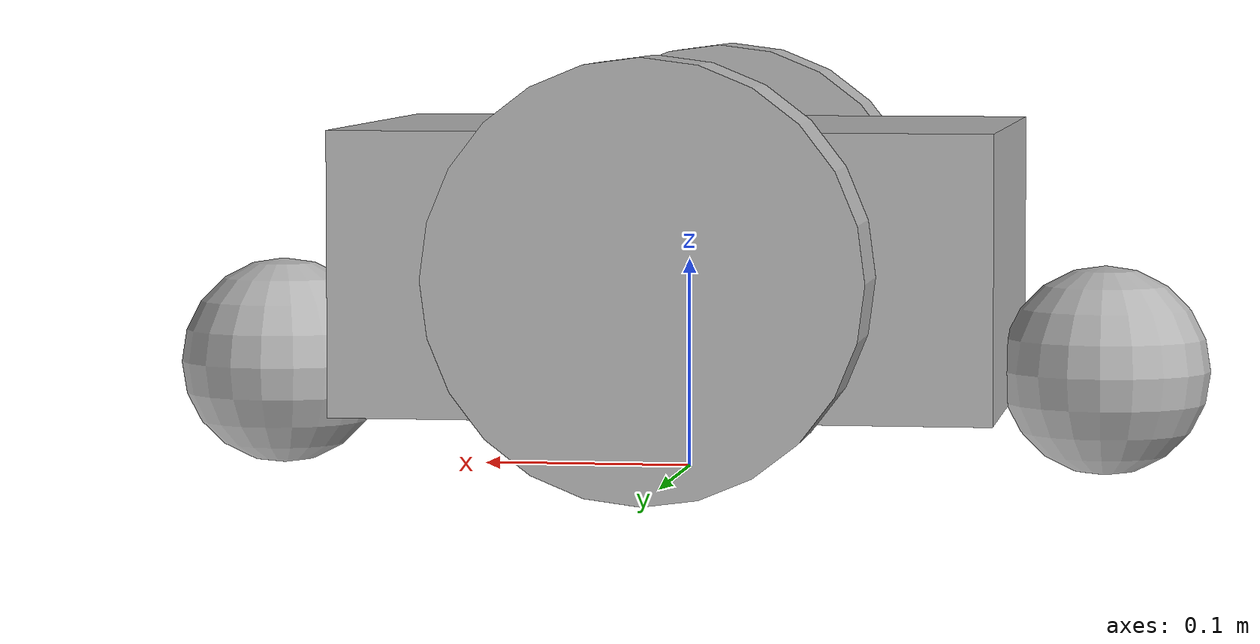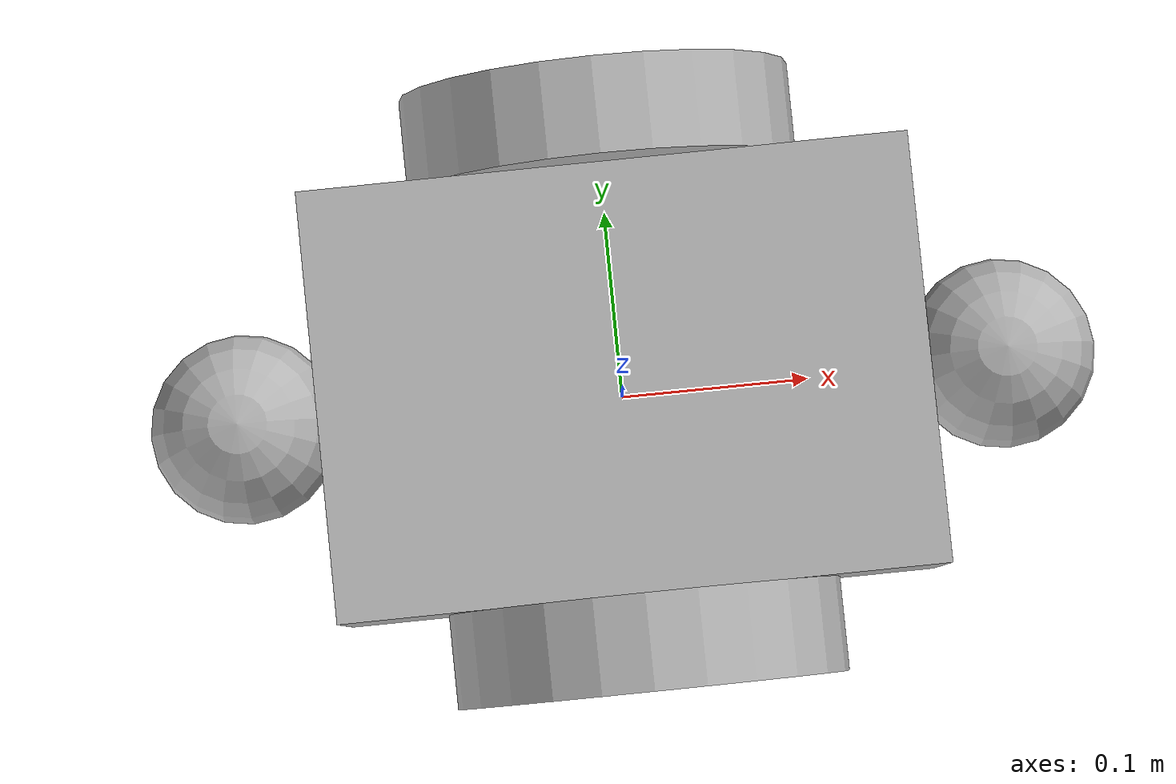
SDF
<?xml version='1.0'?>
<sdf version='1.5'>
  <model name="robonaldo">
    <static>false</static>
    <link name="chassis">

      <pose>0 0 .09886 0 0 0</pose>
      <collision name="collision">
        <geometry>
          <box>
            <size>.308864 .217932 .13335</size>
          </box>
        </geometry>
      </collision>

      <visual name="visual">
        <geometry>
          <box>
            <size>.308864 .217932 .13335</size>
          </box>
        </geometry>
      </visual>
      <collision name="front_caster_collision">
        <pose>-0.2 0 -0.05 0 0 0</pose>

        <geometry>
          <sphere>
            <radius>.05</radius>
          </sphere>
        </geometry>
        <surface>
          <friction>
            <ode>
              <mu>0</mu>
              <mu2>0</mu2>
              <slip1>1.0</slip1>
              <slip2>1.0</slip2>
            </ode>
          </friction>
        </surface>
      </collision>

      <visual name="front_caster_visual">
        <pose>-0.2 0 -0.05 0 0 0</pose>

        <geometry>
          <sphere>
            <radius>.05</radius>
          </sphere>
        </geometry>
        <!--To make caster wheel heavier, use flesh_mass_fraction-->
      </visual>
      <collision name="back_caster_collision">
        <pose>0.2 0 -0.05 0 0 0</pose>

        <geometry>
          <sphere>
            <radius>.05</radius>
          </sphere>
        </geometry>
        <surface>
          <friction>
            <ode>
              <mu>0</mu>
              <mu2>0</mu2>
              <slip1>1.0</slip1>
              <slip2>1.0</slip2>
            </ode>
          </friction>
        </surface>
      </collision>

      <visual name="back_caster_visual">
        <pose>0.2 0 -0.05 0 0 0</pose>

        <geometry>
          <sphere>
            <radius>.05</radius>
          </sphere>
        </geometry>
        <!--To make caster wheel heavier, use flesh_mass_fraction-->
      </visual>
      <!--Add imu and magnetometer code here-->
      <sensor type="imu" name="imu">
        <imu>
          <linear_acceleration>
            <x></x>
            <y></y>
            <z></z>
          </linear_acceleration>
          <angular_velocity>
            <x></x>
            <y></y>
            <z></z>
          </angular_velocity>
        </imu>
      </sensor>
      <sensor type="magnetometer" name="magnetometer">
        <magnetometer>
          <x></x>
          <y></y>
          <z></z>
        </magnetometer>
      </sensor>
    </link>

    <link name="left_wheel">
      <pose>0 0.1332738 0.1 0 1.5707 1.5707</pose>
      <collision name="collision">
        <geometry>
          <cylinder>
            <radius>.1008888</radius>
            <length>.0486156</length>
          </cylinder>
        </geometry>
      </collision>
      <visual name="visual">
        <geometry>
          <cylinder>
            <radius>.1008888</radius>
            <length>.0486156</length>
          </cylinder>
        </geometry>
      </visual>
    </link>

    <link name="right_wheel">
      <pose>0 -0.1332738 0.1 0 1.5707 1.5707</pose>
      <collision name="collision">
        <geometry>
          <cylinder>
            <radius>.1008888</radius>
            <length>.0486156</length>
          </cylinder>
        </geometry>
      </collision>
      <visual name="visual">
        <geometry>
          <cylinder>
            <radius>.1008888</radius>
            <length>.0486156</length>
          </cylinder>
        </geometry>
      </visual>
    </link>

    <joint type="revolute" name="left_wheel_hinge">
      <pose>0 0 -0.03 0 0 0</pose>
      <child>left_wheel</child>
      <parent>chassis</parent>
      <axis>
        <xyz>0 0 1</xyz>
      </axis>
    </joint>
    <joint type="revolute" name="right_wheel_hinge">
      <pose>0 0 0.03 0 0 0</pose>
      <child>right_wheel</child>
      <parent>chassis</parent>
      <axis>
        <xyz>0 0 1</xyz>
      </axis>
    </joint>

  </model>
</sdf>
